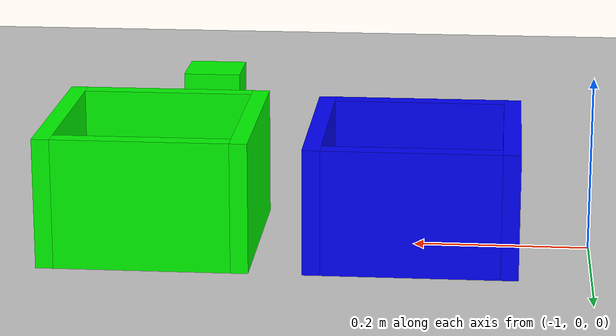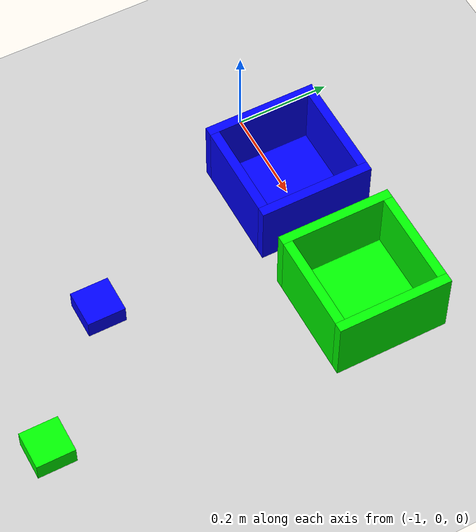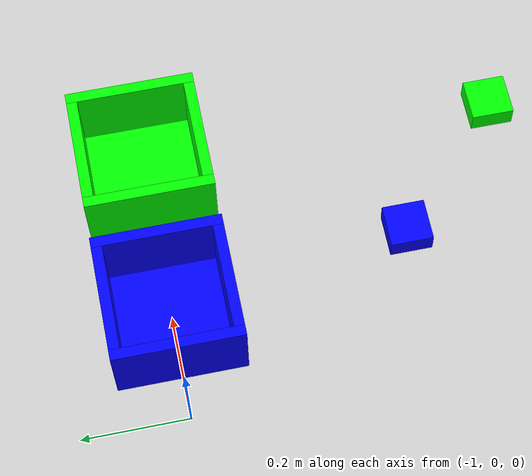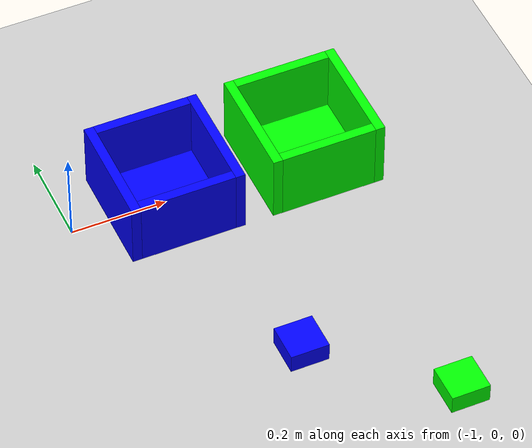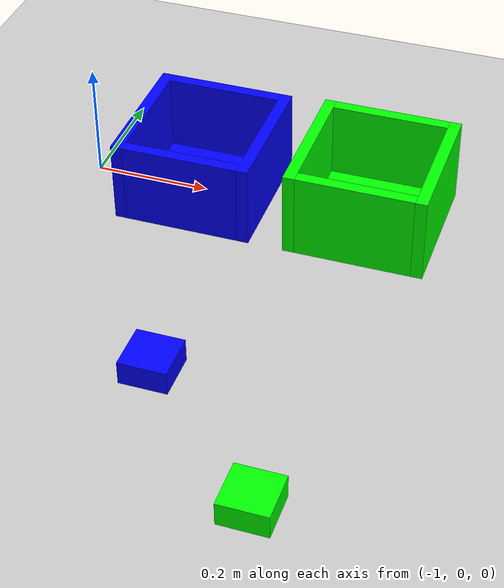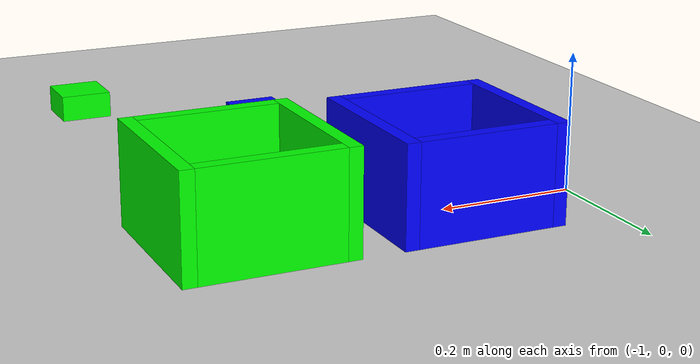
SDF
<sdf version="1.7">
 <world name="default">
  <model name="ground_plane">
   <static>1</static>
   <link name="link">
    <collision name="collision">
     <geometry><plane><normal>0 0 1</normal><size>100 100</size></plane></geometry>
     <surface>
      <contact><collide_bitmask>65535</collide_bitmask></contact>
      <friction><ode><mu>100</mu><mu2>50</mu2></ode></friction>
     </surface>
    </collision>
    <visual name="visual">
     <cast_shadows>0</cast_shadows>
     <geometry><plane><normal>0 0 1</normal><size>100 100</size></plane></geometry>
     <material>
      <script><uri>file://media/materials/scripts/gazebo.material</uri><name>Gazebo/Grey</name></script>
     </material>
    </visual>
   </link>
  </model>
  <model name="box_green">
   <link name="link_0">
    <inertial>
     <mass>0.94</mass>
     <inertia>
      <ixx>0.00316467</ixx>
      <ixy>0</ixy>
      <ixz>0</ixz>
      <iyy>0.00316467</iyy>
      <iyz>0</iyz>
      <izz>0.00626667</izz>
     </inertia>
    </inertial>
    <pose>0 0 -0.03 0 -0 0</pose>
    <visual name="visual">
     <geometry><box><size>0.2 0.2 0.02</size></box></geometry>
     <material>
      <lighting>1</lighting>
      <script><uri>file://media/materials/scripts/gazebo.material</uri><name>Gazebo/Grey</name></script>
      <shader type="pixel"><normal_map>__default__</normal_map></shader>
      <ambient>0 1 0 1</ambient>
      <diffuse>0.7 0.7 0.7 1</diffuse>
      <specular>0.01 0.01 0.01 1</specular>
      <emissive>0 0 0 1</emissive>
     </material>
    </visual>
    <collision name="collision">
     <geometry><box><size>0.2 0.2 0.02</size></box></geometry>
     <surface>
      <friction>
       <ode><mu>1</mu><mu2>1</mu2><fdir1>0 0 0</fdir1><slip1>0</slip1><slip2>0</slip2></ode>
       <torsional>
        <coefficient>1</coefficient>
        <patch_radius>0</patch_radius>
        <surface_radius>0</surface_radius>
        <use_patch_radius>1</use_patch_radius>
        <ode><slip>0</slip></ode>
       </torsional>
      </friction>
      <bounce><restitution_coefficient>0</restitution_coefficient><threshold>1e+06</threshold></bounce>
      <contact>
       <collide_without_contact>0</collide_without_contact>
       <collide_without_contact_bitmask>1</collide_without_contact_bitmask>
       <collide_bitmask>1</collide_bitmask>
       <ode>
        <soft_cfm>0</soft_cfm>
        <soft_erp>0.2</soft_erp>
        <kp>1e+13</kp>
        <kd>1</kd>
        <max_vel>0.01</max_vel>
        <min_depth>0</min_depth>
       </ode>
       <bullet>
        <split_impulse>1</split_impulse>
        <split_impulse_penetration_threshold>-0.01</split_impulse_penetration_threshold>
        <soft_cfm>0</soft_cfm>
        <soft_erp>0.2</soft_erp>
        <kp>1e+13</kp>
        <kd>1</kd>
       </bullet>
      </contact>
     </surface>
    </collision>
   </link>
   <link name="link_1">
    <inertial>
     <mass>2.256</mass>
     <inertia>
      <ixx>0.0409088</ixx>
      <ixy>0</ixy>
      <ixz>0</ixz>
      <iyy>0.0301552</iyy>
      <iyz>0</iyz>
      <izz>0.010904</izz>
     </inertia>
    </inertial>
    <pose>-0.11 0 0.038 0 -0 0</pose>
    <visual name="visual">
     <geometry><box><size>0.02 0.24 0.15</size></box></geometry>
     <material>
      <lighting>1</lighting>
      <script><uri>file://media/materials/scripts/gazebo.material</uri><name>Gazebo/Grey</name></script>
      <shader type="pixel"><normal_map>__default__</normal_map></shader>
      <ambient>0 1 0 1</ambient>
      <diffuse>0.7 0.7 0.7 1</diffuse>
      <specular>0.01 0.01 0.01 1</specular>
      <emissive>0 0 0 1</emissive>
     </material>
    </visual>
    <collision name="collision">
     <geometry><box><size>0.02 0.24 0.15</size></box></geometry>
     <surface>
      <friction>
       <ode><mu>1</mu><mu2>1</mu2><fdir1>0 0 0</fdir1><slip1>0</slip1><slip2>0</slip2></ode>
       <torsional>
        <coefficient>1</coefficient>
        <patch_radius>0</patch_radius>
        <surface_radius>0</surface_radius>
        <use_patch_radius>1</use_patch_radius>
        <ode><slip>0</slip></ode>
       </torsional>
      </friction>
      <bounce><restitution_coefficient>0</restitution_coefficient><threshold>1e+06</threshold></bounce>
      <contact>
       <collide_without_contact>0</collide_without_contact>
       <collide_without_contact_bitmask>1</collide_without_contact_bitmask>
       <collide_bitmask>1</collide_bitmask>
       <ode>
        <soft_cfm>0</soft_cfm>
        <soft_erp>0.2</soft_erp>
        <kp>1e+13</kp>
        <kd>1</kd>
        <max_vel>0.01</max_vel>
        <min_depth>0</min_depth>
       </ode>
       <bullet>
        <split_impulse>1</split_impulse>
        <split_impulse_penetration_threshold>-0.01</split_impulse_penetration_threshold>
        <soft_cfm>0</soft_cfm>
        <soft_erp>0.2</soft_erp>
        <kp>1e+13</kp>
        <kd>1</kd>
       </bullet>
      </contact>
     </surface>
    </collision>
   </link>
   <link name="link_1_clone">
    <inertial>
     <mass>2.256</mass>
     <inertia>
      <ixx>0.0409088</ixx>
      <ixy>0</ixy>
      <ixz>0</ixz>
      <iyy>0.0301552</iyy>
      <iyz>0</iyz>
      <izz>0.010904</izz>
     </inertia>
    </inertial>
    <pose>0.11 0 0.038 0 -0 0</pose>
    <visual name="visual">
     <geometry><box><size>0.02 0.24 0.15</size></box></geometry>
     <material>
      <lighting>1</lighting>
      <script><uri>file://media/materials/scripts/gazebo.material</uri><name>Gazebo/Grey</name></script>
      <shader type="pixel"><normal_map>__default__</normal_map></shader>
      <ambient>0 1 0 1</ambient>
      <diffuse>0.7 0.7 0.7 1</diffuse>
      <specular>0.01 0.01 0.01 1</specular>
      <emissive>0 0 0 1</emissive>
     </material>
    </visual>
    <collision name="collision">
     <geometry><box><size>0.02 0.24 0.15</size></box></geometry>
     <surface>
      <friction>
       <ode><mu>1</mu><mu2>1</mu2><fdir1>0 0 0</fdir1><slip1>0</slip1><slip2>0</slip2></ode>
       <torsional>
        <coefficient>1</coefficient>
        <patch_radius>0</patch_radius>
        <surface_radius>0</surface_radius>
        <use_patch_radius>1</use_patch_radius>
        <ode><slip>0</slip></ode>
       </torsional>
      </friction>
      <bounce><restitution_coefficient>0</restitution_coefficient><threshold>1e+06</threshold></bounce>
      <contact>
       <collide_without_contact>0</collide_without_contact>
       <collide_without_contact_bitmask>1</collide_without_contact_bitmask>
       <collide_bitmask>1</collide_bitmask>
       <ode>
        <soft_cfm>0</soft_cfm>
        <soft_erp>0.2</soft_erp>
        <kp>1e+13</kp>
        <kd>1</kd>
        <max_vel>0.01</max_vel>
        <min_depth>0</min_depth>
       </ode>
       <bullet>
        <split_impulse>1</split_impulse>
        <split_impulse_penetration_threshold>-0.01</split_impulse_penetration_threshold>
        <soft_cfm>0</soft_cfm>
        <soft_erp>0.2</soft_erp>
        <kp>1e+13</kp>
        <kd>1</kd>
       </bullet>
      </contact>
     </surface>
    </collision>
   </link>
   <link name="link_1_clone_0">
    <inertial>
     <mass>1.88</mass>
     <inertia>
      <ixx>0.0251293</ixx>
      <ixy>0</ixy>
      <ixz>0</ixz>
      <iyy>0.0313333</iyy>
      <iyz>0</iyz>
      <izz>0.00632933</izz>
     </inertia>
    </inertial>
    <pose>0 0.11 0.038 0 -0 0</pose>
    <visual name="visual">
     <geometry><box><size>0.2 0.02 0.15</size></box></geometry>
     <material>
      <lighting>1</lighting>
      <script><uri>file://media/materials/scripts/gazebo.material</uri><name>Gazebo/Grey</name></script>
      <shader type="pixel"><normal_map>__default__</normal_map></shader>
      <ambient>0 1 0 1</ambient>
      <diffuse>0.7 0.7 0.7 1</diffuse>
      <specular>0.01 0.01 0.01 1</specular>
      <emissive>0 0 0 1</emissive>
     </material>
    </visual>
    <collision name="collision">
     <geometry><box><size>0.2 0.02 0.15</size></box></geometry>
     <surface>
      <friction>
       <ode><mu>1</mu><mu2>1</mu2><fdir1>0 0 0</fdir1><slip1>0</slip1><slip2>0</slip2></ode>
       <torsional>
        <coefficient>1</coefficient>
        <patch_radius>0</patch_radius>
        <surface_radius>0</surface_radius>
        <use_patch_radius>1</use_patch_radius>
        <ode><slip>0</slip></ode>
       </torsional>
      </friction>
      <bounce><restitution_coefficient>0</restitution_coefficient><threshold>1e+06</threshold></bounce>
      <contact>
       <collide_without_contact>0</collide_without_contact>
       <collide_without_contact_bitmask>1</collide_without_contact_bitmask>
       <collide_bitmask>1</collide_bitmask>
       <ode>
        <soft_cfm>0</soft_cfm>
        <soft_erp>0.2</soft_erp>
        <kp>1e+13</kp>
        <kd>1</kd>
        <max_vel>0.01</max_vel>
        <min_depth>0</min_depth>
       </ode>
       <bullet>
        <split_impulse>1</split_impulse>
        <split_impulse_penetration_threshold>-0.01</split_impulse_penetration_threshold>
        <soft_cfm>0</soft_cfm>
        <soft_erp>0.2</soft_erp>
        <kp>1e+13</kp>
        <kd>1</kd>
       </bullet>
      </contact>
     </surface>
    </collision>
   </link>
   <link name="link_1_clone_0_clone">
    <inertial>
     <mass>1.88</mass>
     <inertia>
      <ixx>0.0251293</ixx>
      <ixy>0</ixy>
      <ixz>0</ixz>
      <iyy>0.0313333</iyy>
      <iyz>0</iyz>
      <izz>0.00632933</izz>
     </inertia>
    </inertial>
    <pose>0 -0.11 0.038 0 -0 0</pose>
    <visual name="visual">
     <geometry><box><size>0.2 0.02 0.15</size></box></geometry>
     <material>
      <lighting>1</lighting>
      <script><uri>file://media/materials/scripts/gazebo.material</uri><name>Gazebo/Grey</name></script>
      <shader type="pixel"><normal_map>__default__</normal_map></shader>
      <ambient>0 1 0 1</ambient>
      <diffuse>0.7 0.7 0.7 1</diffuse>
      <specular>0.01 0.01 0.01 1</specular>
      <emissive>0 0 0 1</emissive>
     </material>
    </visual>
    <collision name="collision">
     <geometry><box><size>0.2 0.02 0.15</size></box></geometry>
     <surface>
      <friction>
       <ode><mu>1</mu><mu2>1</mu2><fdir1>0 0 0</fdir1><slip1>0</slip1><slip2>0</slip2></ode>
       <torsional>
        <coefficient>1</coefficient>
        <patch_radius>0</patch_radius>
        <surface_radius>0</surface_radius>
        <use_patch_radius>1</use_patch_radius>
        <ode><slip>0</slip></ode>
       </torsional>
      </friction>
      <bounce><restitution_coefficient>0</restitution_coefficient><threshold>1e+06</threshold></bounce>
      <contact>
       <collide_without_contact>0</collide_without_contact>
       <collide_without_contact_bitmask>1</collide_without_contact_bitmask>
       <collide_bitmask>1</collide_bitmask>
       <ode>
        <soft_cfm>0</soft_cfm>
        <soft_erp>0.2</soft_erp>
        <kp>1e+13</kp>
        <kd>1</kd>
        <max_vel>0.01</max_vel>
        <min_depth>0</min_depth>
       </ode>
       <bullet>
        <split_impulse>1</split_impulse>
        <split_impulse_penetration_threshold>-0.01</split_impulse_penetration_threshold>
        <soft_cfm>0</soft_cfm>
        <soft_erp>0.2</soft_erp>
        <kp>1e+13</kp>
        <kd>1</kd>
       </bullet>
      </contact>
     </surface>
    </collision>
   </link>
   <static>0</static>
   <pose>-0.5 0 0.035756 0 -0 0</pose>
  </model>
  <model name="box_blue">
   <link name="link_0">
    <inertial>
     <mass>0.94</mass>
     <inertia>
      <ixx>0.00316467</ixx>
      <ixy>0</ixy>
      <ixz>0</ixz>
      <iyy>0.00316467</iyy>
      <iyz>0</iyz>
      <izz>0.00626667</izz>
     </inertia>
    </inertial>
    <pose>0 0 -0.03 0 -0 0</pose>
    <visual name="visual">
     <geometry><box><size>0.2 0.2 0.02</size></box></geometry>
     <material>
      <lighting>1</lighting>
      <script><uri>file://media/materials/scripts/gazebo.material</uri><name>Gazebo/Grey</name></script>
      <shader type="pixel"><normal_map>__default__</normal_map></shader>
      <ambient>0 0 1 1</ambient>
      <diffuse>0.7 0.7 0.7 1</diffuse>
      <specular>0.01 0.01 0.01 1</specular>
      <emissive>0 0 0 1</emissive>
     </material>
    </visual>
    <collision name="collision">
     <geometry><box><size>0.2 0.2 0.02</size></box></geometry>
     <surface>
      <friction>
       <ode><mu>1</mu><mu2>1</mu2><fdir1>0 0 0</fdir1><slip1>0</slip1><slip2>0</slip2></ode>
       <torsional>
        <coefficient>1</coefficient>
        <patch_radius>0</patch_radius>
        <surface_radius>0</surface_radius>
        <use_patch_radius>1</use_patch_radius>
        <ode><slip>0</slip></ode>
       </torsional>
      </friction>
      <bounce><restitution_coefficient>0</restitution_coefficient><threshold>1e+06</threshold></bounce>
      <contact>
       <collide_without_contact>0</collide_without_contact>
       <collide_without_contact_bitmask>1</collide_without_contact_bitmask>
       <collide_bitmask>1</collide_bitmask>
       <ode>
        <soft_cfm>0</soft_cfm>
        <soft_erp>0.2</soft_erp>
        <kp>1e+13</kp>
        <kd>1</kd>
        <max_vel>0.01</max_vel>
        <min_depth>0</min_depth>
       </ode>
       <bullet>
        <split_impulse>1</split_impulse>
        <split_impulse_penetration_threshold>-0.01</split_impulse_penetration_threshold>
        <soft_cfm>0</soft_cfm>
        <soft_erp>0.2</soft_erp>
        <kp>1e+13</kp>
        <kd>1</kd>
       </bullet>
      </contact>
     </surface>
    </collision>
   </link>
   <link name="link_1">
    <inertial>
     <mass>2.256</mass>
     <inertia>
      <ixx>0.0409088</ixx>
      <ixy>0</ixy>
      <ixz>0</ixz>
      <iyy>0.0301552</iyy>
      <iyz>0</iyz>
      <izz>0.010904</izz>
     </inertia>
    </inertial>
    <pose>-0.11 0 0.038 0 -0 0</pose>
    <visual name="visual">
     <geometry><box><size>0.02 0.24 0.15</size></box></geometry>
     <material>
      <lighting>1</lighting>
      <script><uri>file://media/materials/scripts/gazebo.material</uri><name>Gazebo/Grey</name></script>
      <shader type="pixel"><normal_map>__default__</normal_map></shader>
      <ambient>0 0 1 1</ambient>
      <diffuse>0.7 0.7 0.7 1</diffuse>
      <specular>0.01 0.01 0.01 1</specular>
      <emissive>0 0 0 1</emissive>
     </material>
    </visual>
    <collision name="collision">
     <geometry><box><size>0.02 0.24 0.15</size></box></geometry>
     <surface>
      <friction>
       <ode><mu>1</mu><mu2>1</mu2><fdir1>0 0 0</fdir1><slip1>0</slip1><slip2>0</slip2></ode>
       <torsional>
        <coefficient>1</coefficient>
        <patch_radius>0</patch_radius>
        <surface_radius>0</surface_radius>
        <use_patch_radius>1</use_patch_radius>
        <ode><slip>0</slip></ode>
       </torsional>
      </friction>
      <bounce><restitution_coefficient>0</restitution_coefficient><threshold>1e+06</threshold></bounce>
      <contact>
       <collide_without_contact>0</collide_without_contact>
       <collide_without_contact_bitmask>1</collide_without_contact_bitmask>
       <collide_bitmask>1</collide_bitmask>
       <ode>
        <soft_cfm>0</soft_cfm>
        <soft_erp>0.2</soft_erp>
        <kp>1e+13</kp>
        <kd>1</kd>
        <max_vel>0.01</max_vel>
        <min_depth>0</min_depth>
       </ode>
       <bullet>
        <split_impulse>1</split_impulse>
        <split_impulse_penetration_threshold>-0.01</split_impulse_penetration_threshold>
        <soft_cfm>0</soft_cfm>
        <soft_erp>0.2</soft_erp>
        <kp>1e+13</kp>
        <kd>1</kd>
       </bullet>
      </contact>
     </surface>
    </collision>
   </link>
   <link name="link_1_clone">
    <inertial>
     <mass>2.256</mass>
     <inertia>
      <ixx>0.0409088</ixx>
      <ixy>0</ixy>
      <ixz>0</ixz>
      <iyy>0.0301552</iyy>
      <iyz>0</iyz>
      <izz>0.010904</izz>
     </inertia>
    </inertial>
    <pose>0.11 0 0.038 0 -0 0</pose>
    <visual name="visual">
     <geometry><box><size>0.02 0.24 0.15</size></box></geometry>
     <material>
      <lighting>1</lighting>
      <script><uri>file://media/materials/scripts/gazebo.material</uri><name>Gazebo/Grey</name></script>
      <shader type="pixel"><normal_map>__default__</normal_map></shader>
      <ambient>0 0 1 1</ambient>
      <diffuse>0.7 0.7 0.7 1</diffuse>
      <specular>0.01 0.01 0.01 1</specular>
      <emissive>0 0 0 1</emissive>
     </material>
    </visual>
    <collision name="collision">
     <geometry><box><size>0.02 0.24 0.15</size></box></geometry>
     <surface>
      <friction>
       <ode><mu>1</mu><mu2>1</mu2><fdir1>0 0 0</fdir1><slip1>0</slip1><slip2>0</slip2></ode>
       <torsional>
        <coefficient>1</coefficient>
        <patch_radius>0</patch_radius>
        <surface_radius>0</surface_radius>
        <use_patch_radius>1</use_patch_radius>
        <ode><slip>0</slip></ode>
       </torsional>
      </friction>
      <bounce><restitution_coefficient>0</restitution_coefficient><threshold>1e+06</threshold></bounce>
      <contact>
       <collide_without_contact>0</collide_without_contact>
       <collide_without_contact_bitmask>1</collide_without_contact_bitmask>
       <collide_bitmask>1</collide_bitmask>
       <ode>
        <soft_cfm>0</soft_cfm>
        <soft_erp>0.2</soft_erp>
        <kp>1e+13</kp>
        <kd>1</kd>
        <max_vel>0.01</max_vel>
        <min_depth>0</min_depth>
       </ode>
       <bullet>
        <split_impulse>1</split_impulse>
        <split_impulse_penetration_threshold>-0.01</split_impulse_penetration_threshold>
        <soft_cfm>0</soft_cfm>
        <soft_erp>0.2</soft_erp>
        <kp>1e+13</kp>
        <kd>1</kd>
       </bullet>
      </contact>
     </surface>
    </collision>
   </link>
   <link name="link_1_clone_0">
    <inertial>
     <mass>1.88</mass>
     <inertia>
      <ixx>0.0251293</ixx>
      <ixy>0</ixy>
      <ixz>0</ixz>
      <iyy>0.0313333</iyy>
      <iyz>0</iyz>
      <izz>0.00632933</izz>
     </inertia>
    </inertial>
    <pose>0 0.11 0.038 0 -0 0</pose>
    <visual name="visual">
     <geometry><box><size>0.2 0.02 0.15</size></box></geometry>
     <material>
      <lighting>1</lighting>
      <script><uri>file://media/materials/scripts/gazebo.material</uri><name>Gazebo/Grey</name></script>
      <shader type="pixel"><normal_map>__default__</normal_map></shader>
      <ambient>0 0 1 1</ambient>
      <diffuse>0.7 0.7 0.7 1</diffuse>
      <specular>0.01 0.01 0.01 1</specular>
      <emissive>0 0 0 1</emissive>
     </material>
    </visual>
    <collision name="collision">
     <geometry><box><size>0.2 0.02 0.15</size></box></geometry>
     <surface>
      <friction>
       <ode><mu>1</mu><mu2>1</mu2><fdir1>0 0 0</fdir1><slip1>0</slip1><slip2>0</slip2></ode>
       <torsional>
        <coefficient>1</coefficient>
        <patch_radius>0</patch_radius>
        <surface_radius>0</surface_radius>
        <use_patch_radius>1</use_patch_radius>
        <ode><slip>0</slip></ode>
       </torsional>
      </friction>
      <bounce><restitution_coefficient>0</restitution_coefficient><threshold>1e+06</threshold></bounce>
      <contact>
       <collide_without_contact>0</collide_without_contact>
       <collide_without_contact_bitmask>1</collide_without_contact_bitmask>
       <collide_bitmask>1</collide_bitmask>
       <ode>
        <soft_cfm>0</soft_cfm>
        <soft_erp>0.2</soft_erp>
        <kp>1e+13</kp>
        <kd>1</kd>
        <max_vel>0.01</max_vel>
        <min_depth>0</min_depth>
       </ode>
       <bullet>
        <split_impulse>1</split_impulse>
        <split_impulse_penetration_threshold>-0.01</split_impulse_penetration_threshold>
        <soft_cfm>0</soft_cfm>
        <soft_erp>0.2</soft_erp>
        <kp>1e+13</kp>
        <kd>1</kd>
       </bullet>
      </contact>
     </surface>
    </collision>
   </link>
   <link name="link_1_clone_0_clone">
    <inertial>
     <mass>1.88</mass>
     <inertia>
      <ixx>0.0251293</ixx>
      <ixy>0</ixy>
      <ixz>0</ixz>
      <iyy>0.0313333</iyy>
      <iyz>0</iyz>
      <izz>0.00632933</izz>
     </inertia>
    </inertial>
    <pose>0 -0.11 0.038 0 -0 0</pose>
    <visual name="visual">
     <geometry><box><size>0.2 0.02 0.15</size></box></geometry>
     <material>
      <lighting>1</lighting>
      <script><uri>file://media/materials/scripts/gazebo.material</uri><name>Gazebo/Grey</name></script>
      <shader type="pixel"><normal_map>__default__</normal_map></shader>
      <ambient>0 0 1 1</ambient>
      <diffuse>0.7 0.7 0.7 1</diffuse>
      <specular>0.01 0.01 0.01 1</specular>
      <emissive>0 0 0 1</emissive>
     </material>
    </visual>
    <collision name="collision">
     <geometry><box><size>0.2 0.02 0.15</size></box></geometry>
     <surface>
      <friction>
       <ode><mu>1</mu><mu2>1</mu2><fdir1>0 0 0</fdir1><slip1>0</slip1><slip2>0</slip2></ode>
       <torsional>
        <coefficient>1</coefficient>
        <patch_radius>0</patch_radius>
        <surface_radius>0</surface_radius>
        <use_patch_radius>1</use_patch_radius>
        <ode><slip>0</slip></ode>
       </torsional>
      </friction>
      <bounce><restitution_coefficient>0</restitution_coefficient><threshold>1e+06</threshold></bounce>
      <contact>
       <collide_without_contact>0</collide_without_contact>
       <collide_without_contact_bitmask>1</collide_without_contact_bitmask>
       <collide_bitmask>1</collide_bitmask>
       <ode>
        <soft_cfm>0</soft_cfm>
        <soft_erp>0.2</soft_erp>
        <kp>1e+13</kp>
        <kd>1</kd>
        <max_vel>0.01</max_vel>
        <min_depth>0</min_depth>
       </ode>
       <bullet>
        <split_impulse>1</split_impulse>
        <split_impulse_penetration_threshold>-0.01</split_impulse_penetration_threshold>
        <soft_cfm>0</soft_cfm>
        <soft_erp>0.2</soft_erp>
        <kp>1e+13</kp>
        <kd>1</kd>
       </bullet>
      </contact>
     </surface>
    </collision>
   </link>
   <static>0</static>
   <pose>-0.8 0 0.03 0 -0 0</pose>
  </model>
  <model name="cube_green">
   <link name="link_0">
    <inertial>
     <mass>0.6016</mass>
     <inertia>
      <ixx>0.00064171</ixx>
      <ixy>0</ixy>
      <ixz>0</ixz>
      <iyy>0.00064171</iyy>
      <iyz>0</iyz>
      <izz>0.00064171</izz>
     </inertia>
    </inertial>
    <visual name="visual">
     <geometry><box><size>0.08 0.08 0.08</size></box></geometry>
     <material>
      <lighting>1</lighting>
      <script><uri>file://media/materials/scripts/gazebo.material</uri><name>Gazebo/Grey</name></script>
      <shader type="pixel"><normal_map>__default__</normal_map></shader>
      <ambient>0 1 0 1</ambient>
      <diffuse>0.7 0.7 0.7 1</diffuse>
      <specular>0.01 0.01 0.01 1</specular>
      <emissive>0 0 0 1</emissive>
     </material>
    </visual>
    <collision name="collision">
     <geometry><box><size>0.08 0.08 0.08</size></box></geometry>
     <surface>
      <friction>
       <ode><mu>1</mu><mu2>1</mu2><fdir1>0 0 0</fdir1><slip1>0</slip1><slip2>0</slip2></ode>
       <torsional>
        <coefficient>1</coefficient>
        <patch_radius>0</patch_radius>
        <surface_radius>0</surface_radius>
        <use_patch_radius>1</use_patch_radius>
        <ode><slip>0</slip></ode>
       </torsional>
      </friction>
      <bounce><restitution_coefficient>0</restitution_coefficient><threshold>1e+06</threshold></bounce>
      <contact>
       <collide_without_contact>0</collide_without_contact>
       <collide_without_contact_bitmask>1</collide_without_contact_bitmask>
       <collide_bitmask>1</collide_bitmask>
       <ode>
        <soft_cfm>0</soft_cfm>
        <soft_erp>0.2</soft_erp>
        <kp>1e+13</kp>
        <kd>1</kd>
        <max_vel>0.01</max_vel>
        <min_depth>0</min_depth>
       </ode>
       <bullet>
        <split_impulse>1</split_impulse>
        <split_impulse_penetration_threshold>-0.01</split_impulse_penetration_threshold>
        <soft_cfm>0</soft_cfm>
        <soft_erp>0.2</soft_erp>
        <kp>1e+13</kp>
        <kd>1</kd>
       </bullet>
      </contact>
     </surface>
    </collision>
   </link>
   <static>0</static>
   <pose>-0.481682 -0.676443 0 0 -0 0</pose>
  </model>
  <model name="cube_blue">
   <link name="link_2">
    <inertial>
     <mass>1175</mass>
     <inertia><ixx>195.833</ixx><ixy>0</ixy><ixz>0</ixz><iyy>195.833</iyy><iyz>0</iyz><izz>195.833</izz></inertia>
    </inertial>
    <visual name="visual">
     <geometry><box><size>0.08 0.08 0.08</size></box></geometry>
     <material>
      <lighting>1</lighting>
      <script><uri>file://media/materials/scripts/gazebo.material</uri><name>Gazebo/Grey</name></script>
      <shader type="pixel"><normal_map>__default__</normal_map></shader>
      <ambient>0 0 1 1</ambient>
      <diffuse>0.7 0.7 0.7 1</diffuse>
      <specular>0.01 0.01 0.01 1</specular>
      <emissive>0 0 0 1</emissive>
     </material>
    </visual>
    <collision name="collision">
     <geometry><box><size>0.08 0.08 0.08</size></box></geometry>
     <surface>
      <friction>
       <ode><mu>1</mu><mu2>1</mu2><fdir1>0 0 0</fdir1><slip1>0</slip1><slip2>0</slip2></ode>
       <torsional>
        <coefficient>1</coefficient>
        <patch_radius>0</patch_radius>
        <surface_radius>0</surface_radius>
        <use_patch_radius>1</use_patch_radius>
        <ode><slip>0</slip></ode>
       </torsional>
      </friction>
      <bounce><restitution_coefficient>0</restitution_coefficient><threshold>1e+06</threshold></bounce>
      <contact>
       <collide_without_contact>0</collide_without_contact>
       <collide_without_contact_bitmask>1</collide_without_contact_bitmask>
       <collide_bitmask>1</collide_bitmask>
       <ode>
        <soft_cfm>0</soft_cfm>
        <soft_erp>0.2</soft_erp>
        <kp>1e+13</kp>
        <kd>1</kd>
        <max_vel>0.01</max_vel>
        <min_depth>0</min_depth>
       </ode>
       <bullet>
        <split_impulse>1</split_impulse>
        <split_impulse_penetration_threshold>-0.01</split_impulse_penetration_threshold>
        <soft_cfm>0</soft_cfm>
        <soft_erp>0.2</soft_erp>
        <kp>1e+13</kp>
        <kd>1</kd>
       </bullet>
      </contact>
     </surface>
    </collision>
   </link>
   <static>0</static>
   <pose>-0.715343 -0.461109 0 0 -0 0</pose>
  </model>
 </world>
</sdf>
